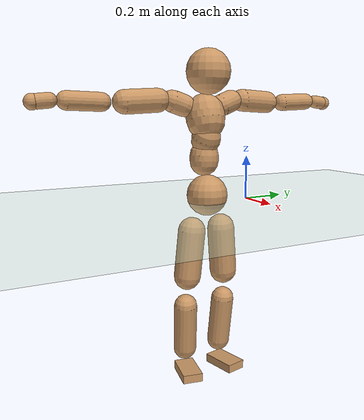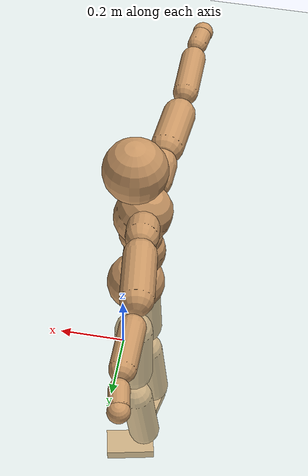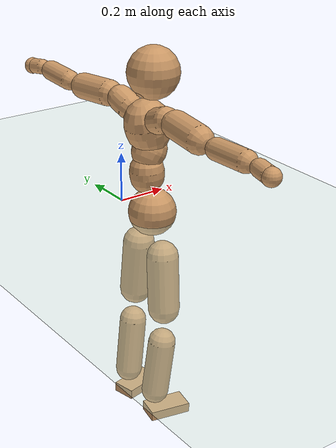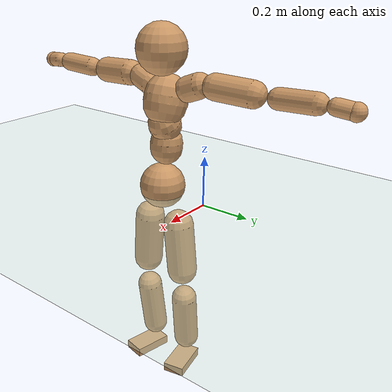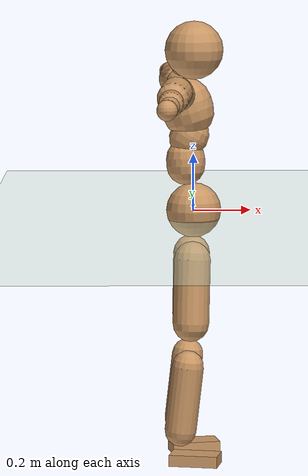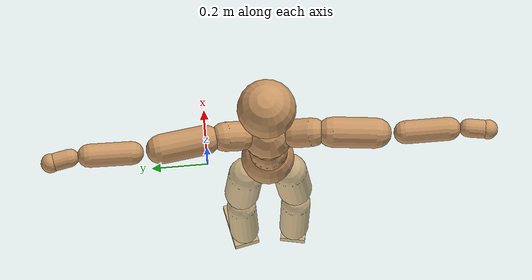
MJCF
<mujoco model="humanoid">
  <compiler coordinate="local"/>
  <default>
    <joint damping="0.0" armature="0.01" stiffness="0.0" limited="true"/>
    <geom conaffinity="1" condim="3" contype="7" margin="0.001" rgba="0.8 0.6 .4 1"/>
  </default>
  <asset>
    <texture type="skybox" builtin="gradient" rgb1=".4 .5 .6" rgb2="0 0 0" width="100" height="100"/>
    <texture builtin="flat" height="1278" mark="cross" markrgb="1 1 1" name="texgeom" random="0.01" rgb1="0.8 0.6 0.4" rgb2="0.8 0.6 0.4" type="cube" width="127"/>
    <texture builtin="checker" height="100" name="texplane" rgb1="0 0 0" rgb2="0.8 0.8 0.8" type="2d" width="100"/>
    <material name="MatPlane" reflectance="0.5" shininess="1" specular="1" texrepeat="60 60" texture="texplane"/>
    <material name="geom" texture="texgeom" texuniform="true"/>
  </asset>
  <worldbody>
    <light cutoff="100" diffuse="1 1 1" dir="-0 0 -1.3" directional="true" exponent="1" pos="0 0 1.3" specular=".1 .1 .1"/>
    <geom conaffinity="1" condim="3" name="floor" pos="0 0 0" rgba="0.8 0.9 0.8 1" size="100 100 .2" type="plane" material="MatPlane"/>
    <body name="Pelvis" pos="-0.0011 -0.212 0.0309">
      <freejoint name="Pelvis"/>
      <geom type="sphere" contype="1" conaffinity="1" density="500" size="0.0939" pos="0.0000 0.0000 0.0000" name="Pelvis"/>
      <body name="L_Hip" pos="-0.0059 0.0724 -0.0887">
        <joint name="L_Hip_x" type="hinge" pos="0 0 0" axis="1 0 0" stiffness="800" damping="80" armature="0.02" range="-180.0000 180.0000"/>
        <joint name="L_Hip_y" type="hinge" pos="0 0 0" axis="0 1 0" stiffness="800" damping="80" armature="0.02" range="-180.0000 180.0000"/>
        <joint name="L_Hip_z" type="hinge" pos="0 0 0" axis="0 0 1" stiffness="800" damping="80" armature="0.02" range="-180.0000 180.0000"/>
        <geom type="capsule" contype="1" conaffinity="1" density="500" fromto="-0.0013 0.0060 -0.0716 -0.0053 0.0239 -0.2865" size="0.063" name="L_Hip"/>
        <body name="L_Knee" pos="-0.0066 0.0299 -0.3581">
          <joint name="L_Knee_x" type="hinge" pos="0 0 0" axis="1 0 0" stiffness="800" damping="80" armature="0.02" range="-180.0000 180.0000"/>
          <joint name="L_Knee_y" type="hinge" pos="0 0 0" axis="0 1 0" stiffness="800" damping="80" armature="0.02" range="-180.0000 180.0000"/>
          <joint name="L_Knee_z" type="hinge" pos="0 0 0" axis="0 0 1" stiffness="800" damping="80" armature="0.02" range="-180.0000 180.0000"/>
          <geom type="capsule" contype="1" conaffinity="1" density="500" fromto="-0.0087 -0.0022 -0.0753 -0.0348 -0.0089 -0.3013" size="0.0541" name="L_Knee"/>
          <body name="L_Ankle" pos="-0.0435 -0.0111 -0.3766">
            <joint name="L_Ankle_x" type="hinge" pos="0 0 0" axis="1 0 0" stiffness="800" damping="80" armature="0.02" range="-180.0000 180.0000"/>
            <joint name="L_Ankle_y" type="hinge" pos="0 0 0" axis="0 1 0" stiffness="800" damping="80" armature="0.02" range="-180.0000 180.0000"/>
            <joint name="L_Ankle_z" type="hinge" pos="0 0 0" axis="0 0 1" stiffness="800" damping="80" armature="0.02" range="-180.0000 180.0000"/>
            <geom type="box" contype="1" conaffinity="1" density="500" pos="0.0574 0.0123 -0.0272" size="0.0833 0.0467 0.0198" quat="0.9945 0.0000 0.0000 0.1052" name="L_Ankle"/>
            <body name="L_Toe" pos="0.1148 0.0246 -0.0544">
              <joint name="L_Toe_x" type="hinge" pos="0 0 0" axis="1 0 0" stiffness="500" damping="50" armature="0.02" range="-180.0000 180.0000"/>
              <joint name="L_Toe_y" type="hinge" pos="0 0 0" axis="0 1 0" stiffness="500" damping="50" armature="0.02" range="-180.0000 180.0000"/>
              <joint name="L_Toe_z" type="hinge" pos="0 0 0" axis="0 0 1" stiffness="500" damping="50" armature="0.02" range="-180.0000 180.0000"/>
              <geom type="box" contype="1" conaffinity="1" density="500" pos="0.0000 0.0000 0.0269" size="0.001 0.0023 0.001" quat="0.9938 0.0000 0.0000 0.1115" name="L_Toe"/>
            </body>
          </body>
        </body>
      </body>
      <body name="R_Hip" pos="-0.0033 -0.07 -0.0879">
        <joint name="R_Hip_x" type="hinge" pos="0 0 0" axis="1 0 0" stiffness="800" damping="80" armature="0.02" range="-180.0000 180.0000"/>
        <joint name="R_Hip_y" type="hinge" pos="0 0 0" axis="0 1 0" stiffness="800" damping="80" armature="0.02" range="-180.0000 180.0000"/>
        <joint name="R_Hip_z" type="hinge" pos="0 0 0" axis="0 0 1" stiffness="800" damping="80" armature="0.02" range="-180.0000 180.0000"/>
        <geom type="capsule" contype="1" conaffinity="1" density="500" fromto="-0.0018 -0.0070 -0.0728 -0.0074 -0.0280 -0.2913" size="0.0623" name="R_Hip"/>
        <body name="R_Knee" pos="-0.0092 -0.035 -0.3641">
          <joint name="R_Knee_x" type="hinge" pos="0 0 0" axis="1 0 0" stiffness="800" damping="80" armature="0.02" range="-180.0000 180.0000"/>
          <joint name="R_Knee_y" type="hinge" pos="0 0 0" axis="0 1 0" stiffness="800" damping="80" armature="0.02" range="-180.0000 180.0000"/>
          <joint name="R_Knee_z" type="hinge" pos="0 0 0" axis="0 0 1" stiffness="800" damping="80" armature="0.02" range="-180.0000 180.0000"/>
          <geom type="capsule" contype="1" conaffinity="1" density="500" fromto="-0.0085 0.0026 -0.0753 -0.0341 0.0104 -0.3013" size="0.0543" name="R_Knee"/>
          <body name="R_Ankle" pos="-0.0426 0.013 -0.3766">
            <joint name="R_Ankle_x" type="hinge" pos="0 0 0" axis="1 0 0" stiffness="800" damping="80" armature="0.02" range="-180.0000 180.0000"/>
            <joint name="R_Ankle_y" type="hinge" pos="0 0 0" axis="0 1 0" stiffness="800" damping="80" armature="0.02" range="-180.0000 180.0000"/>
            <joint name="R_Ankle_z" type="hinge" pos="0 0 0" axis="0 0 1" stiffness="800" damping="80" armature="0.02" range="-180.0000 180.0000"/>
            <geom type="box" contype="1" conaffinity="1" density="500" pos="0.0592 -0.0116 -0.0228" size="0.0836 0.0465 0.0197" quat="0.9953 0.0000 0.0000 -0.0966" name="R_Ankle"/>
            <body name="R_Toe" pos="0.1183 -0.0232 -0.0455">
              <joint name="R_Toe_x" type="hinge" pos="0 0 0" axis="1 0 0" stiffness="500" damping="50" armature="0.02" range="-180.0000 180.0000"/>
              <joint name="R_Toe_y" type="hinge" pos="0 0 0" axis="0 1 0" stiffness="500" damping="50" armature="0.02" range="-180.0000 180.0000"/>
              <joint name="R_Toe_z" type="hinge" pos="0 0 0" axis="0 0 1" stiffness="500" damping="50" armature="0.02" range="-180.0000 180.0000"/>
              <geom type="box" contype="1" conaffinity="1" density="500" pos="0.0000 0.0000 0.0250" size="0.0009 0.0023 0.0011" quat="0.9962 0.0000 0.0000 -0.0870" name="R_Toe"/>
            </body>
          </body>
        </body>
      </body>
      <body name="Torso" pos="-0.025 -0.0029 0.1028">
        <joint name="Torso_x" type="hinge" pos="0 0 0" axis="1 0 0" stiffness="1000" damping="100" armature="0.02" range="-180.0000 180.0000"/>
        <joint name="Torso_y" type="hinge" pos="0 0 0" axis="0 1 0" stiffness="1000" damping="100" armature="0.02" range="-180.0000 180.0000"/>
        <joint name="Torso_z" type="hinge" pos="0 0 0" axis="0 0 1" stiffness="1000" damping="100" armature="0.02" range="-180.0000 180.0000"/>
        <geom type="capsule" contype="1" conaffinity="1" density="500" fromto="-0.0025 0.0023 0.0762 -0.0016 0.0015 0.0508" size="0.066495" name="Torso"/>
        <body name="Spine" pos="-0.0041 0.0038 0.127">
          <joint name="Spine_x" type="hinge" pos="0 0 0" axis="1 0 0" stiffness="1000" damping="100" armature="0.02" range="-180.0000 180.0000"/>
          <joint name="Spine_y" type="hinge" pos="0 0 0" axis="0 1 0" stiffness="1000" damping="100" armature="0.02" range="-180.0000 180.0000"/>
          <joint name="Spine_z" type="hinge" pos="0 0 0" axis="0 0 1" stiffness="1000" damping="100" armature="0.02" range="-180.0000 180.0000"/>
          <geom type="capsule" contype="1" conaffinity="1" density="500" fromto="0.0168 0.0012 0.0294 0.0112 0.0008 0.0196" size="0.066495" name="Spine"/>
          <body name="Chest" pos="0.0281 0.002 0.0489">
            <joint name="Chest_x" type="hinge" pos="0 0 0" axis="1 0 0" stiffness="1000" damping="100" armature="0.02" range="-180.0000 180.0000"/>
            <joint name="Chest_y" type="hinge" pos="0 0 0" axis="0 1 0" stiffness="1000" damping="100" armature="0.02" range="-180.0000 180.0000"/>
            <joint name="Chest_z" type="hinge" pos="0 0 0" axis="0 0 1" stiffness="1000" damping="100" armature="0.02" range="-180.0000 180.0000"/>
            <geom type="capsule" contype="1" conaffinity="1" density="500" fromto="-0.0253 -0.0007 0.0880 -0.0168 -0.0005 0.0587" size="0.088443" name="Chest"/>
            <body name="Neck" pos="-0.0476 -0.002 0.2073">
              <joint name="Neck_x" type="hinge" pos="0 0 0" axis="1 0 0" stiffness="500" damping="50" armature="0.02" range="-180.0000 180.0000"/>
              <joint name="Neck_y" type="hinge" pos="0 0 0" axis="0 1 0" stiffness="500" damping="50" armature="0.02" range="-180.0000 180.0000"/>
              <joint name="Neck_z" type="hinge" pos="0 0 0" axis="0 0 1" stiffness="500" damping="50" armature="0.02" range="-180.0000 180.0000"/>
              <geom type="capsule" contype="1" conaffinity="1" density="500" fromto="0.0101 0.0005 0.0124 0.0404 0.0021 0.0495" size="0.038502" name="Neck"/>
              <body name="Head" pos="0.0505 0.0026 0.0619">
                <joint name="Head_x" type="hinge" pos="0 0 0" axis="1 0 0" stiffness="500" damping="50" armature="0.02" range="-180.0000 180.0000"/>
                <joint name="Head_y" type="hinge" pos="0 0 0" axis="0 1 0" stiffness="500" damping="50" armature="0.02" range="-180.0000 180.0000"/>
                <joint name="Head_z" type="hinge" pos="0 0 0" axis="0 0 1" stiffness="500" damping="50" armature="0.02" range="-180.0000 180.0000"/>
                <geom type="sphere" contype="1" conaffinity="1" density="500" size="0.0998" pos="0.0000 0.0000 0.0000" name="Head"/>
              </body>
            </body>
            <body name="L_Thorax" pos="-0.0368 0.0754 0.1174">
              <joint name="L_Thorax_x" type="hinge" pos="0 0 0" axis="1 0 0" stiffness="500" damping="50" armature="0.02" range="-180.0000 180.0000"/>
              <joint name="L_Thorax_y" type="hinge" pos="0 0 0" axis="0 1 0" stiffness="500" damping="50" armature="0.02" range="-180.0000 180.0000"/>
              <joint name="L_Thorax_z" type="hinge" pos="0 0 0" axis="0 0 1" stiffness="500" damping="50" armature="0.02" range="-180.0000 180.0000"/>
              <geom type="capsule" contype="1" conaffinity="1" density="500" fromto="-0.0015 0.0173 0.0065 -0.0061 0.0694 0.0261" size="0.0504" name="L_Thorax"/>
              <body name="L_Shoulder" pos="-0.0077 0.0867 0.0326">
                <joint name="L_Shoulder_x" type="hinge" pos="0 0 0" axis="1 0 0" stiffness="500" damping="50" armature="0.02" range="-720.0000 720.0000"/>
                <joint name="L_Shoulder_y" type="hinge" pos="0 0 0" axis="0 1 0" stiffness="500" damping="50" armature="0.02" range="-720.0000 720.0000"/>
                <joint name="L_Shoulder_z" type="hinge" pos="0 0 0" axis="0 0 1" stiffness="500" damping="50" armature="0.02" range="-720.0000 720.0000"/>
                <geom type="capsule" contype="1" conaffinity="1" density="500" fromto="-0.0059 0.0503 -0.0026 -0.0235 0.2011 -0.0105" size="0.0514" name="L_Shoulder"/>
                <body name="L_Elbow" pos="-0.0293 0.2514 -0.0132">
                  <joint name="L_Elbow_x" type="hinge" pos="0 0 0" axis="1 0 0" stiffness="500" damping="50" armature="0.02" range="-720.0000 720.0000"/>
                  <joint name="L_Elbow_y" type="hinge" pos="0 0 0" axis="0 1 0" stiffness="500" damping="50" armature="0.02" range="-720.0000 720.0000"/>
                  <joint name="L_Elbow_z" type="hinge" pos="0 0 0" axis="0 0 1" stiffness="500" damping="50" armature="0.02" range="-720.0000 720.0000"/>
                  <geom type="capsule" contype="1" conaffinity="1" density="500" fromto="0.0002 0.0483 0.0018 0.0007 0.1933 0.0073" size="0.0398" name="L_Elbow"/>
                  <body name="L_Wrist" pos="0.0009 0.2417 0.0091">
                    <joint name="L_Wrist_x" type="hinge" pos="0 0 0" axis="1 0 0" stiffness="300" damping="30" armature="0.02" range="-180.0000 180.0000"/>
                    <joint name="L_Wrist_y" type="hinge" pos="0 0 0" axis="0 1 0" stiffness="300" damping="30" armature="0.02" range="-180.0000 180.0000"/>
                    <joint name="L_Wrist_z" type="hinge" pos="0 0 0" axis="0 0 1" stiffness="300" damping="30" armature="0.02" range="-180.0000 180.0000"/>
                    <geom type="capsule" contype="1" conaffinity="1" density="500" fromto="-0.0027 0.0165 -0.0020 -0.0109 0.0659 -0.0080" size="0.0311" name="L_Wrist"/>
                    <body name="L_Hand" pos="-0.0136 0.0824 -0.01">
                      <joint name="L_Hand_x" type="hinge" pos="0 0 0" axis="1 0 0" stiffness="300" damping="30" armature="0.02" range="-180.0000 180.0000"/>
                      <joint name="L_Hand_y" type="hinge" pos="0 0 0" axis="0 1 0" stiffness="300" damping="30" armature="0.02" range="-180.0000 180.0000"/>
                      <joint name="L_Hand_z" type="hinge" pos="0 0 0" axis="0 0 1" stiffness="300" damping="30" armature="0.02" range="-180.0000 180.0000"/>
                      <geom type="sphere" contype="1" conaffinity="1" density="500" size="0.0332" pos="0.0000 0.0000 0.0000" name="L_Hand"/>
                    </body>
                  </body>
                </body>
              </body>
            </body>
            <body name="R_Thorax" pos="-0.0419 -0.0769 0.1152">
              <joint name="R_Thorax_x" type="hinge" pos="0 0 0" axis="1 0 0" stiffness="500" damping="50" armature="0.02" range="-180.0000 180.0000"/>
              <joint name="R_Thorax_y" type="hinge" pos="0 0 0" axis="0 1 0" stiffness="500" damping="50" armature="0.02" range="-180.0000 180.0000"/>
              <joint name="R_Thorax_z" type="hinge" pos="0 0 0" axis="0 0 1" stiffness="500" damping="50" armature="0.02" range="-180.0000 180.0000"/>
              <geom type="capsule" contype="1" conaffinity="1" density="500" fromto="-0.0020 -0.0181 0.0065 -0.0081 -0.0726 0.0259" size="0.0494" name="R_Thorax"/>
              <body name="R_Shoulder" pos="-0.0102 -0.0907 0.0324">
                <joint name="R_Shoulder_x" type="hinge" pos="0 0 0" axis="1 0 0" stiffness="500" damping="50" armature="0.02" range="-720.0000 720.0000"/>
                <joint name="R_Shoulder_y" type="hinge" pos="0 0 0" axis="0 1 0" stiffness="500" damping="50" armature="0.02" range="-720.0000 720.0000"/>
                <joint name="R_Shoulder_z" type="hinge" pos="0 0 0" axis="0 0 1" stiffness="500" damping="50" armature="0.02" range="-720.0000 720.0000"/>
                <geom type="capsule" contype="1" conaffinity="1" density="500" fromto="-0.0043 -0.0493 -0.0025 -0.0174 -0.1971 -0.0101" size="0.0524" name="R_Shoulder"/>
                <body name="R_Elbow" pos="-0.0217 -0.2464 -0.0126">
                  <joint name="R_Elbow_x" type="hinge" pos="0 0 0" axis="1 0 0" stiffness="500" damping="50" armature="0.02" range="-720.0000 720.0000"/>
                  <joint name="R_Elbow_y" type="hinge" pos="0 0 0" axis="0 1 0" stiffness="500" damping="50" armature="0.02" range="-720.0000 720.0000"/>
                  <joint name="R_Elbow_z" type="hinge" pos="0 0 0" axis="0 0 1" stiffness="500" damping="50" armature="0.02" range="-720.0000 720.0000"/>
                  <geom type="capsule" contype="1" conaffinity="1" density="500" fromto="-0.0005 -0.0493 0.0017 -0.0018 -0.1973 0.0070" size="0.0397" name="R_Elbow"/>
                  <body name="R_Wrist" pos="-0.0023 -0.2466 0.0087">
                    <joint name="R_Wrist_x" type="hinge" pos="0 0 0" axis="1 0 0" stiffness="300" damping="30" armature="0.02" range="-180.0000 180.0000"/>
                    <joint name="R_Wrist_y" type="hinge" pos="0 0 0" axis="0 1 0" stiffness="300" damping="30" armature="0.02" range="-180.0000 180.0000"/>
                    <joint name="R_Wrist_z" type="hinge" pos="0 0 0" axis="0 0 1" stiffness="300" damping="30" armature="0.02" range="-180.0000 180.0000"/>
                    <geom type="capsule" contype="1" conaffinity="1" density="500" fromto="-0.0021 -0.0165 -0.0015 -0.0086 -0.0660 -0.0060" size="0.0317" name="R_Wrist"/>
                    <body name="R_Hand" pos="-0.0107 -0.0825 -0.0075">
                      <joint name="R_Hand_x" type="hinge" pos="0 0 0" axis="1 0 0" stiffness="300" damping="30" armature="0.02" range="-180.0000 180.0000"/>
                      <joint name="R_Hand_y" type="hinge" pos="0 0 0" axis="0 1 0" stiffness="300" damping="30" armature="0.02" range="-180.0000 180.0000"/>
                      <joint name="R_Hand_z" type="hinge" pos="0 0 0" axis="0 0 1" stiffness="300" damping="30" armature="0.02" range="-180.0000 180.0000"/>
                      <geom type="sphere" contype="1" conaffinity="1" density="500" size="0.0332" pos="0.0000 0.0000 0.0000" name="R_Hand"/>
                    </body>
                  </body>
                </body>
              </body>
            </body>
          </body>
        </body>
      </body>
    </body>
  </worldbody>
  <actuator>
    <motor name="L_Hip_x" joint="L_Hip_x" gear="500"/>
    <motor name="L_Hip_y" joint="L_Hip_y" gear="500"/>
    <motor name="L_Hip_z" joint="L_Hip_z" gear="500"/>
    <motor name="L_Knee_x" joint="L_Knee_x" gear="500"/>
    <motor name="L_Knee_y" joint="L_Knee_y" gear="500"/>
    <motor name="L_Knee_z" joint="L_Knee_z" gear="500"/>
    <motor name="L_Ankle_x" joint="L_Ankle_x" gear="500"/>
    <motor name="L_Ankle_y" joint="L_Ankle_y" gear="500"/>
    <motor name="L_Ankle_z" joint="L_Ankle_z" gear="500"/>
    <motor name="L_Toe_x" joint="L_Toe_x" gear="500"/>
    <motor name="L_Toe_y" joint="L_Toe_y" gear="500"/>
    <motor name="L_Toe_z" joint="L_Toe_z" gear="500"/>
    <motor name="R_Hip_x" joint="R_Hip_x" gear="500"/>
    <motor name="R_Hip_y" joint="R_Hip_y" gear="500"/>
    <motor name="R_Hip_z" joint="R_Hip_z" gear="500"/>
    <motor name="R_Knee_x" joint="R_Knee_x" gear="500"/>
    <motor name="R_Knee_y" joint="R_Knee_y" gear="500"/>
    <motor name="R_Knee_z" joint="R_Knee_z" gear="500"/>
    <motor name="R_Ankle_x" joint="R_Ankle_x" gear="500"/>
    <motor name="R_Ankle_y" joint="R_Ankle_y" gear="500"/>
    <motor name="R_Ankle_z" joint="R_Ankle_z" gear="500"/>
    <motor name="R_Toe_x" joint="R_Toe_x" gear="500"/>
    <motor name="R_Toe_y" joint="R_Toe_y" gear="500"/>
    <motor name="R_Toe_z" joint="R_Toe_z" gear="500"/>
    <motor name="Torso_x" joint="Torso_x" gear="500"/>
    <motor name="Torso_y" joint="Torso_y" gear="500"/>
    <motor name="Torso_z" joint="Torso_z" gear="500"/>
    <motor name="Spine_x" joint="Spine_x" gear="500"/>
    <motor name="Spine_y" joint="Spine_y" gear="500"/>
    <motor name="Spine_z" joint="Spine_z" gear="500"/>
    <motor name="Chest_x" joint="Chest_x" gear="500"/>
    <motor name="Chest_y" joint="Chest_y" gear="500"/>
    <motor name="Chest_z" joint="Chest_z" gear="500"/>
    <motor name="Neck_x" joint="Neck_x" gear="500"/>
    <motor name="Neck_y" joint="Neck_y" gear="500"/>
    <motor name="Neck_z" joint="Neck_z" gear="500"/>
    <motor name="Head_x" joint="Head_x" gear="500"/>
    <motor name="Head_y" joint="Head_y" gear="500"/>
    <motor name="Head_z" joint="Head_z" gear="500"/>
    <motor name="L_Thorax_x" joint="L_Thorax_x" gear="500"/>
    <motor name="L_Thorax_y" joint="L_Thorax_y" gear="500"/>
    <motor name="L_Thorax_z" joint="L_Thorax_z" gear="500"/>
    <motor name="L_Shoulder_x" joint="L_Shoulder_x" gear="500"/>
    <motor name="L_Shoulder_y" joint="L_Shoulder_y" gear="500"/>
    <motor name="L_Shoulder_z" joint="L_Shoulder_z" gear="500"/>
    <motor name="L_Elbow_x" joint="L_Elbow_x" gear="500"/>
    <motor name="L_Elbow_y" joint="L_Elbow_y" gear="500"/>
    <motor name="L_Elbow_z" joint="L_Elbow_z" gear="500"/>
    <motor name="L_Wrist_x" joint="L_Wrist_x" gear="500"/>
    <motor name="L_Wrist_y" joint="L_Wrist_y" gear="500"/>
    <motor name="L_Wrist_z" joint="L_Wrist_z" gear="500"/>
    <motor name="L_Hand_x" joint="L_Hand_x" gear="500"/>
    <motor name="L_Hand_y" joint="L_Hand_y" gear="500"/>
    <motor name="L_Hand_z" joint="L_Hand_z" gear="500"/>
    <motor name="R_Thorax_x" joint="R_Thorax_x" gear="500"/>
    <motor name="R_Thorax_y" joint="R_Thorax_y" gear="500"/>
    <motor name="R_Thorax_z" joint="R_Thorax_z" gear="500"/>
    <motor name="R_Shoulder_x" joint="R_Shoulder_x" gear="500"/>
    <motor name="R_Shoulder_y" joint="R_Shoulder_y" gear="500"/>
    <motor name="R_Shoulder_z" joint="R_Shoulder_z" gear="500"/>
    <motor name="R_Elbow_x" joint="R_Elbow_x" gear="500"/>
    <motor name="R_Elbow_y" joint="R_Elbow_y" gear="500"/>
    <motor name="R_Elbow_z" joint="R_Elbow_z" gear="500"/>
    <motor name="R_Wrist_x" joint="R_Wrist_x" gear="500"/>
    <motor name="R_Wrist_y" joint="R_Wrist_y" gear="500"/>
    <motor name="R_Wrist_z" joint="R_Wrist_z" gear="500"/>
    <motor name="R_Hand_x" joint="R_Hand_x" gear="500"/>
    <motor name="R_Hand_y" joint="R_Hand_y" gear="500"/>
    <motor name="R_Hand_z" joint="R_Hand_z" gear="500"/>
  </actuator>
  <contact>
    <exclude body1="Torso" body2="Chest"/>
    <exclude body1="Head" body2="Chest"/>
    <exclude body1="R_Knee" body2="R_Toe"/>
    <exclude body1="R_Knee" body2="L_Ankle"/>
    <exclude body1="R_Knee" body2="L_Toe"/>
    <exclude body1="L_Knee" body2="L_Toe"/>
    <exclude body1="L_Knee" body2="R_Ankle"/>
    <exclude body1="L_Knee" body2="R_Toe"/>
    <exclude body1="L_Shoulder" body2="Chest"/>
    <exclude body1="R_Shoulder" body2="Chest"/>
  </contact>
  <sensor/>
  <size njmax="700" nconmax="700"/>
</mujoco>
